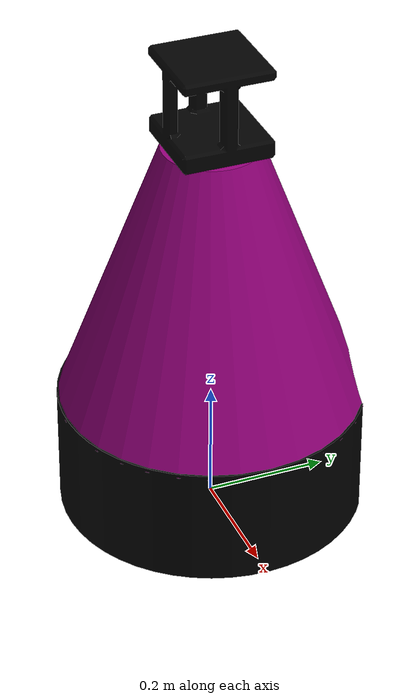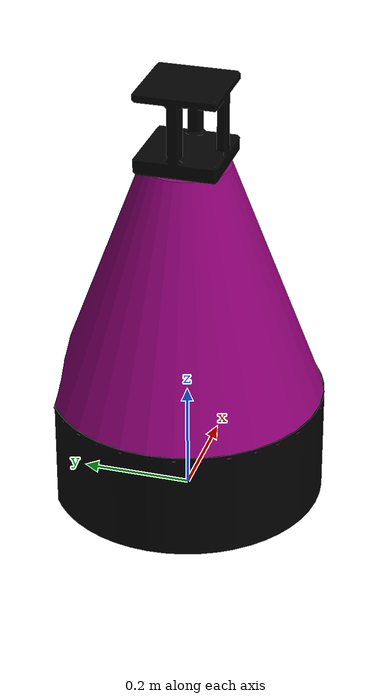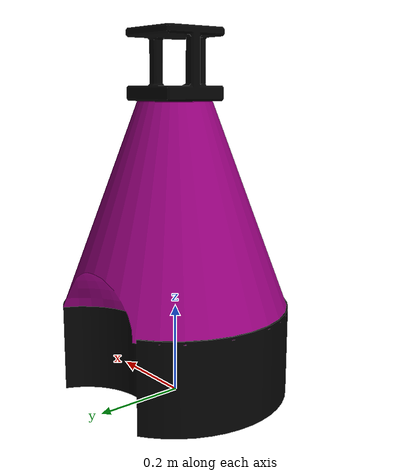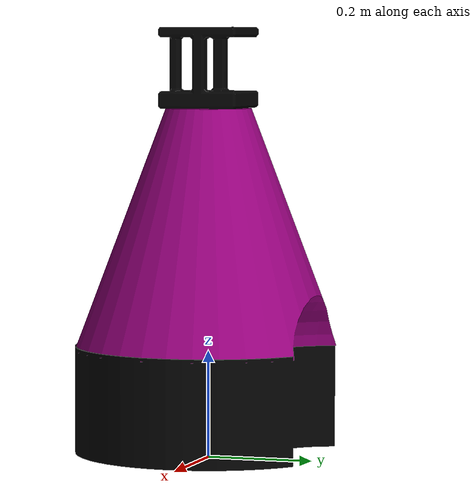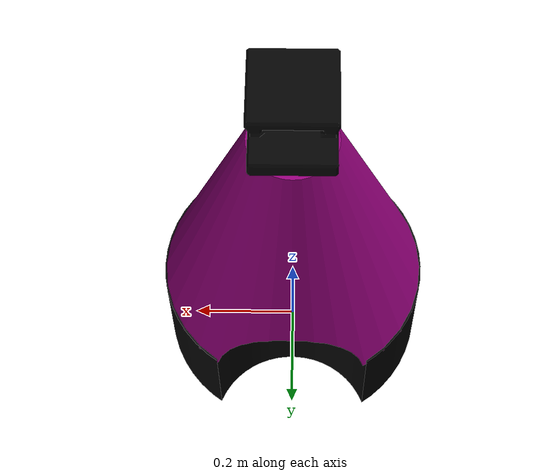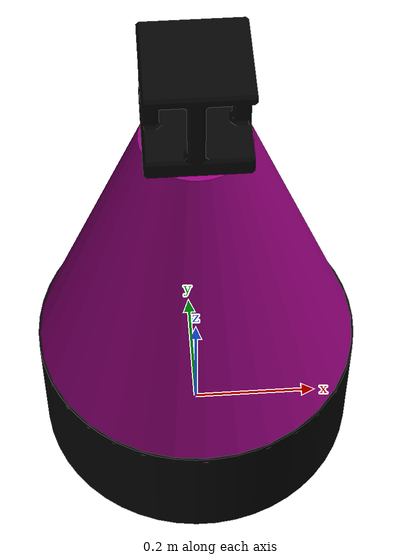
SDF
<?xml version="1.0" ?>
<sdf version="1.5">
  <model name="other_robot">
    <static>false</static>
    <link name="base">
       <pose>0 0 0.01 0 0 1.57</pose>
        <inertial>
            <mass>31</mass>
            <pose>0 0 0 0 0 0</pose>
            <inertia>
                <ixx>0</ixx>
                <ixy>0</ixy>
                <ixz>0</ixz>
                <iyy>0</iyy>
                <iyz>0</iyz>
                <izz>2.86</izz>
            </inertia>
        </inertial>
      <collision name="collision_base">
        <geometry>
          <mesh>
            <scale>1 1 1</scale>
            <uri>model://minhoteam_msl_robot/meshes/base.stl</uri>
          </mesh>
        </geometry>
        <surface>
          <bounce>
            <restitution_coefficient>0</restitution_coefficient>
          </bounce>
          <friction>
              <ode>
                <mu>0.1</mu>
                <mu2>0.1</mu2>
              </ode>
          </friction>
        </surface>
      </collision>
      <visual name="visual_base">
        <geometry>
          <mesh>
            <scale>1 1 1</scale>
            <uri>model://minhoteam_msl_robot/meshes/base.stl</uri>
          </mesh>
        </geometry>
        <material>
            <ambient>0.02 0.02 0.02 1.0</ambient>
            <diffuse>0.01 0.01 0.01 1.0</diffuse>
            <specular>0.4 0.4 0.4 1.0</specular>
        </material>
      </visual>
      <velocity_decay>
        <linear>0.003</linear>
        <angular>0.005</angular>
      </velocity_decay>
      <self_collide>0</self_collide>
    </link>

    <link name="mid">
       <pose>0 0 0.008 0 0 1.57</pose>
      <collision name="collision_middle">
        <geometry>
          <mesh>
            <scale>1 1 1</scale>
            <uri>model://minhoteam_msl_robot/meshes/mid.stl</uri>
          </mesh>
        </geometry>
      </collision>
      <visual name="visual_middle">
        <geometry>
          <mesh>
            <scale>1 1 1</scale>
            <uri>model://minhoteam_msl_robot/meshes/mid.stl</uri>
          </mesh>
        </geometry>
            <material>
                <!-- CYAN -->
                <ambient>0.6 0.0 0.3 1.0</ambient>
                <diffuse>0.6 0.0 0.5 1.0</diffuse>
                <specular>0.5 0.5 0.5 1.0</specular>
            </material>
      </visual>
    </link>

    <link name="head">
      <collision name="collision_head">
      <pose>0 0 0.73 0 0 1.57</pose>
        <geometry>
          <box>
            <size>0.15 0.15 0.15</size>
          </box>
        </geometry>
      </collision>
      <visual name="visual_head">
      <pose>0 0 0.01 0 0 1.57</pose>
        <geometry>
          <mesh>
            <scale>1 1 1</scale>
            <uri>model://minhoteam_msl_robot/meshes/head.stl</uri>
          </mesh>
        </geometry>
        <material>
            <ambient>0.0 0.0 0.0 1.0</ambient>
            <diffuse>0.01 0.01 0.01 1.0</diffuse>
            <specular>0.5 0.5 0.5 1.0</specular>
        </material>
      </visual>
    </link>

    <joint type="fixed" name="base_mid">
        <pose>0 0 0.2 0 0 0</pose>
        <child>mid</child>
        <parent>base</parent>
        <axis>
          <xyz>0 0 1</xyz>
        </axis>
    </joint>

    <joint type="fixed" name="mid_head">
        <pose>0 0 0.5 0 0 0</pose>
        <child>head</child>
        <parent>mid</parent>
        <axis>
          <xyz>0 0 1</xyz>
        </axis>
    </joint>

    <plugin filename="libother_robot.so" name="other_robot">

    </plugin>

  </model>
</sdf>
